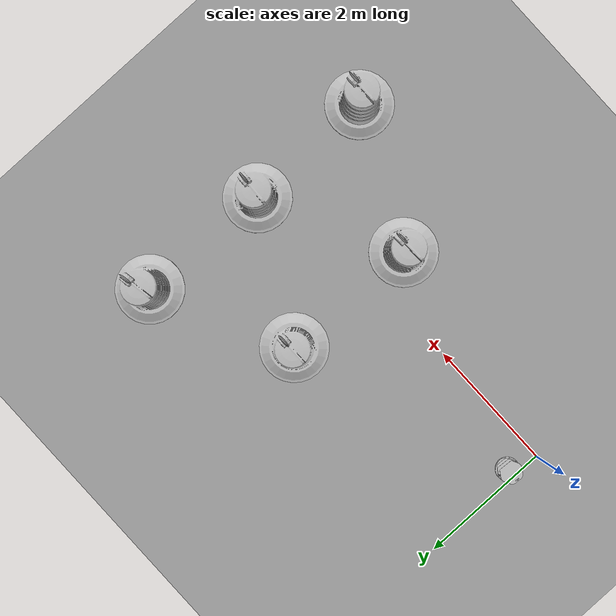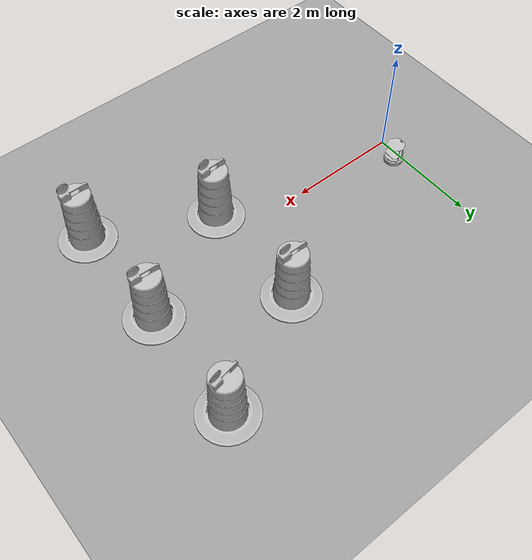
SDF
<sdf version="1.4">
 <world name="default">
  <model name="ground_plane_0">
   <static>1</static>
   <link name="link">
    <collision name="collision">
     <geometry><plane><normal>0 0 1</normal><size>100 100</size></plane></geometry>
     <surface><friction><ode><mu>100</mu><mu2>50</mu2></ode></friction></surface>
    </collision>
    <visual name="visual">
     <cast_shadows>0</cast_shadows>
     <geometry><plane><normal>0 0 1</normal><size>100 100</size></plane></geometry>
     <material>
      <script><uri>file://media/materials/scripts/gazebo.material</uri><name>Gazebo/Grey</name></script>
     </material>
    </visual>
    <velocity_decay><linear>0</linear><angular>0</angular></velocity_decay>
   </link>
   <pose>0.497681 0 0 0 -0 0</pose>
  </model>
  <model name="mobile_base">
   <link name="base_footprint">
    <inertial>
     <pose>-0.00263512 -4.10874e-05 0.129243 0 -0 0</pose>
     <mass>4.6973</mass>
     <inertia>
      <ixx>0.1365</ixx>
      <ixy>-2.51802e-05</ixy>
      <ixz>0.0108194</ixz>
      <iyy>0.132157</iyy>
      <iyz>4.89572e-05</iyz>
      <izz>0.0741648</izz>
     </inertia>
    </inertial>
    <collision name="base_footprint_collision_base_link">
     <pose>0 0 0.06969 0 -0 0</pose>
     <geometry><cylinder><length>0.10938</length><radius>0.178</radius></cylinder></geometry>
     <surface><friction><ode><mu>0.3</mu><mu2>0.3</mu2></ode></friction></surface>
    </collision>
    <collision name="base_footprint_collision_camera_link">
     <pose>-0.087 -0.0015 0.2972 0 -0 0</pose>
     <geometry><box><size>0.073 0.276 0.072</size></box></geometry>
    </collision>
    <collision name="base_footprint_collision_caster_back_link">
     <pose>-0.135 0 0.0192 -1.5708 0 0</pose>
     <geometry><cylinder><length>0.0176</length><radius>0.017</radius></cylinder></geometry>
     <surface>
      <contact><ode><kp>1e+06</kp><kd>100</kd><max_vel>1</max_vel><min_depth>0.001</min_depth></ode></contact>
      <friction><ode><mu>0</mu><mu2>0</mu2></ode></friction>
     </surface>
    </collision>
    <collision name="base_footprint_collision_caster_front_link">
     <pose>0.115 0 0.0172 -1.5708 0 0</pose>
     <geometry><cylinder><length>0.0176</length><radius>0.017</radius></cylinder></geometry>
     <surface>
      <contact><ode><kp>1e+06</kp><kd>100</kd><max_vel>1</max_vel><min_depth>0.001</min_depth></ode></contact>
      <friction><ode><mu>0</mu><mu2>0</mu2></ode></friction>
     </surface>
    </collision>
    <collision name="base_footprint_collision_mount_asus_xtion_pro_link">
     <pose>-0.1024 0 0.2822 0 -0 0</pose>
     <geometry><box><size>0.033 0.276 0.012</size></box></geometry>
    </collision>
    <collision name="base_footprint_collision_plate_bottom_link">
     <pose>0 0 0.1408 0 -0 0</pose>
     <geometry><cylinder><length>0.006</length><radius>0.17</radius></cylinder></geometry>
    </collision>
    <collision name="base_footprint_collision_plate_middle_link">
     <pose>0 0 0.1976 0 -0 0</pose>
     <geometry><cylinder><length>0.006</length><radius>0.17</radius></cylinder></geometry>
    </collision>
    <collision name="base_footprint_collision_plate_top_link">
     <pose>0 0 0.4068 0 -0 0</pose>
     <geometry><cylinder><length>0.006</length><radius>0.17</radius></cylinder></geometry>
    </collision>
    <collision name="base_footprint_collision_pole_bottom_0_link">
     <pose>0.12 0.082 0.113 0 -0 0</pose>
     <geometry><cylinder><length>0.0492</length><radius>0.006</radius></cylinder></geometry>
    </collision>
    <collision name="base_footprint_collision_pole_bottom_1_link">
     <pose>0.055 0.12 0.113 0 -0 0</pose>
     <geometry><cylinder><length>0.0492</length><radius>0.006</radius></cylinder></geometry>
    </collision>
    <collision name="base_footprint_collision_pole_bottom_2_link">
     <pose>-0.055 0.12 0.113 0 -0 0</pose>
     <geometry><cylinder><length>0.0492</length><radius>0.006</radius></cylinder></geometry>
    </collision>
    <collision name="base_footprint_collision_pole_bottom_3_link">
     <pose>0.12 -0.082 0.113 0 -0 0</pose>
     <geometry><cylinder><length>0.0492</length><radius>0.006</radius></cylinder></geometry>
    </collision>
    <collision name="base_footprint_collision_pole_bottom_4_link">
     <pose>0.055 -0.12 0.113 0 -0 0</pose>
     <geometry><cylinder><length>0.0492</length><radius>0.006</radius></cylinder></geometry>
    </collision>
    <collision name="base_footprint_collision_pole_bottom_5_link">
     <pose>-0.055 -0.12 0.113 0 -0 0</pose>
     <geometry><cylinder><length>0.0492</length><radius>0.006</radius></cylinder></geometry>
    </collision>
    <collision name="base_footprint_collision_pole_kinect_0_link">
     <pose>-0.1024 0.098 0.2474 0 -0 0</pose>
     <geometry><cylinder><length>0.0936</length><radius>0.006</radius></cylinder></geometry>
    </collision>
    <collision name="base_footprint_collision_pole_kinect_1_link">
     <pose>-0.1024 -0.098 0.2474 0 -0 0</pose>
     <geometry><cylinder><length>0.0936</length><radius>0.006</radius></cylinder></geometry>
    </collision>
    <collision name="base_footprint_collision_pole_middle_0_link">
     <pose>0.0381 0.1505 0.1742 0 -0 0</pose>
     <geometry><cylinder><length>0.0608</length><radius>0.006</radius></cylinder></geometry>
    </collision>
    <collision name="base_footprint_collision_pole_middle_1_link">
     <pose>0.0381 -0.1505 0.1742 0 -0 0</pose>
     <geometry><cylinder><length>0.0608</length><radius>0.006</radius></cylinder></geometry>
    </collision>
    <collision name="base_footprint_collision_pole_middle_2_link">
     <pose>-0.0381 0.1505 0.1742 0 -0 0</pose>
     <geometry><cylinder><length>0.0608</length><radius>0.006</radius></cylinder></geometry>
    </collision>
    <collision name="base_footprint_collision_pole_middle_3_link">
     <pose>-0.0381 -0.1505 0.1742 0 -0 0</pose>
     <geometry><cylinder><length>0.0608</length><radius>0.006</radius></cylinder></geometry>
    </collision>
    <collision name="base_footprint_collision_pole_top_0_link">
     <pose>0.0381 0.1505 0.3022 0 -0 0</pose>
     <geometry><cylinder><length>0.2032</length><radius>0.006</radius></cylinder></geometry>
    </collision>
    <collision name="base_footprint_collision_pole_top_1_link">
     <pose>0.0381 -0.1505 0.3022 0 -0 0</pose>
     <geometry><cylinder><length>0.2032</length><radius>0.006</radius></cylinder></geometry>
    </collision>
    <collision name="base_footprint_collision_pole_top_2_link">
     <pose>-0.0381 0.1505 0.3022 0 -0 0</pose>
     <geometry><cylinder><length>0.2032</length><radius>0.006</radius></cylinder></geometry>
    </collision>
    <collision name="base_footprint_collision_pole_top_3_link">
     <pose>-0.0381 -0.1505 0.3022 0 -0 0</pose>
     <geometry><cylinder><length>0.2032</length><radius>0.006</radius></cylinder></geometry>
    </collision>
    <visual name="base_footprint_visual_base_link">
     <pose>0.001 0 0.06219 0 -0 0</pose>
     <geometry>
      <mesh><scale>1 1 1</scale><uri>/opt/ros/indigo/share/kobuki_description/meshes/main_body.dae</uri></mesh>
     </geometry>
    </visual>
    <visual name="base_footprint_visual_camera_link">
     <pose>-0.102 0.002 0.3012 0 -0 0</pose>
     <geometry>
      <mesh>
       <scale>1 1 1</scale>
       <uri>/opt/ros/indigo/share/turtlebot_description/meshes/sensors/xtion_pro_camera.dae</uri>
      </mesh>
     </geometry>
    </visual>
    <visual name="base_footprint_visual_mount_asus_xtion_pro_link">
     <pose>-0.1024 0 0.2822 -1.5708 0 0</pose>
     <geometry>
      <mesh>
       <scale>1 1 1</scale>
       <uri>/opt/ros/indigo/share/turtlebot_description/meshes/sensors/xtion_pro_stack.dae</uri>
      </mesh>
     </geometry>
    </visual>
    <visual name="base_footprint_visual_plate_bottom_link">
     <pose>0.02364 0 0.1408 0 -0 0</pose>
     <geometry>
      <mesh>
       <scale>1 1 1</scale>
       <uri>/opt/ros/indigo/share/turtlebot_description/meshes/stacks/hexagons/plate_bottom.dae</uri>
      </mesh>
     </geometry>
    </visual>
    <visual name="base_footprint_visual_plate_middle_link">
     <pose>-0.01364 0 0.1976 0 -0 0</pose>
     <geometry>
      <mesh>
       <scale>1 1 1</scale>
       <uri>/opt/ros/indigo/share/turtlebot_description/meshes/stacks/hexagons/plate_middle.dae</uri>
      </mesh>
     </geometry>
    </visual>
    <visual name="base_footprint_visual_plate_top_link">
     <pose>-0.01364 0 0.4068 0 -0 0</pose>
     <geometry>
      <mesh>
       <scale>1 1 1</scale>
       <uri>/opt/ros/indigo/share/turtlebot_description/meshes/stacks/hexagons/plate_top.dae</uri>
      </mesh>
     </geometry>
    </visual>
    <visual name="base_footprint_visual_pole_bottom_0_link">
     <pose>0.12 0.082 0.113 0 -0 0</pose>
     <geometry>
      <mesh>
       <scale>1 1 1</scale>
       <uri>/opt/ros/indigo/share/turtlebot_description/meshes/stacks/hexagons/pole_bottom.dae</uri>
      </mesh>
     </geometry>
    </visual>
    <visual name="base_footprint_visual_pole_bottom_1_link">
     <pose>0.055 0.12 0.113 0 -0 0</pose>
     <geometry>
      <mesh>
       <scale>1 1 1</scale>
       <uri>/opt/ros/indigo/share/turtlebot_description/meshes/stacks/hexagons/pole_bottom.dae</uri>
      </mesh>
     </geometry>
    </visual>
    <visual name="base_footprint_visual_pole_bottom_2_link">
     <pose>-0.055 0.12 0.113 0 -0 0</pose>
     <geometry>
      <mesh>
       <scale>1 1 1</scale>
       <uri>/opt/ros/indigo/share/turtlebot_description/meshes/stacks/hexagons/pole_bottom.dae</uri>
      </mesh>
     </geometry>
    </visual>
    <visual name="base_footprint_visual_pole_bottom_3_link">
     <pose>0.12 -0.082 0.113 0 -0 0</pose>
     <geometry>
      <mesh>
       <scale>1 1 1</scale>
       <uri>/opt/ros/indigo/share/turtlebot_description/meshes/stacks/hexagons/pole_bottom.dae</uri>
      </mesh>
     </geometry>
    </visual>
    <visual name="base_footprint_visual_pole_bottom_4_link">
     <pose>0.055 -0.12 0.113 0 -0 0</pose>
     <geometry>
      <mesh>
       <scale>1 1 1</scale>
       <uri>/opt/ros/indigo/share/turtlebot_description/meshes/stacks/hexagons/pole_bottom.dae</uri>
      </mesh>
     </geometry>
    </visual>
    <visual name="base_footprint_visual_pole_bottom_5_link">
     <pose>-0.055 -0.12 0.113 0 -0 0</pose>
     <geometry>
      <mesh>
       <scale>1 1 1</scale>
       <uri>/opt/ros/indigo/share/turtlebot_description/meshes/stacks/hexagons/pole_bottom.dae</uri>
      </mesh>
     </geometry>
    </visual>
    <visual name="base_footprint_visual_pole_kinect_0_link">
     <pose>-0.1024 0.098 0.2374 0 -0 0</pose>
     <geometry>
      <mesh>
       <scale>1 1 1</scale>
       <uri>/opt/ros/indigo/share/turtlebot_description/meshes/sensors/sensor_pole.dae</uri>
      </mesh>
     </geometry>
    </visual>
    <visual name="base_footprint_visual_pole_kinect_1_link">
     <pose>-0.1024 -0.098 0.2374 0 -0 0</pose>
     <geometry>
      <mesh>
       <scale>1 1 1</scale>
       <uri>/opt/ros/indigo/share/turtlebot_description/meshes/sensors/sensor_pole.dae</uri>
      </mesh>
     </geometry>
    </visual>
    <visual name="base_footprint_visual_pole_middle_0_link">
     <pose>0.0381 0.1505 0.1742 3.14159 -2.06823e-13 3.14159</pose>
     <geometry>
      <mesh>
       <scale>1 1 1</scale>
       <uri>/opt/ros/indigo/share/turtlebot_description/meshes/stacks/hexagons/pole_middle.dae</uri>
      </mesh>
     </geometry>
    </visual>
    <visual name="base_footprint_visual_pole_middle_1_link">
     <pose>0.0381 -0.1505 0.1742 3.14159 -2.06823e-13 3.14159</pose>
     <geometry>
      <mesh>
       <scale>1 1 1</scale>
       <uri>/opt/ros/indigo/share/turtlebot_description/meshes/stacks/hexagons/pole_middle.dae</uri>
      </mesh>
     </geometry>
    </visual>
    <visual name="base_footprint_visual_pole_middle_2_link">
     <pose>-0.0381 0.1505 0.1742 3.14159 -2.06823e-13 3.14159</pose>
     <geometry>
      <mesh>
       <scale>1 1 1</scale>
       <uri>/opt/ros/indigo/share/turtlebot_description/meshes/stacks/hexagons/pole_middle.dae</uri>
      </mesh>
     </geometry>
    </visual>
    <visual name="base_footprint_visual_pole_middle_3_link">
     <pose>-0.0381 -0.1505 0.1742 3.14159 -2.06823e-13 3.14159</pose>
     <geometry>
      <mesh>
       <scale>1 1 1</scale>
       <uri>/opt/ros/indigo/share/turtlebot_description/meshes/stacks/hexagons/pole_middle.dae</uri>
      </mesh>
     </geometry>
    </visual>
    <visual name="base_footprint_visual_pole_top_0_link">
     <pose>0.0381 0.1505 0.3022 0 -0 0</pose>
     <geometry>
      <mesh>
       <scale>1 1 1</scale>
       <uri>/opt/ros/indigo/share/turtlebot_description/meshes/stacks/hexagons/pole_top.dae</uri>
      </mesh>
     </geometry>
    </visual>
    <visual name="base_footprint_visual_pole_top_1_link">
     <pose>0.0381 -0.1505 0.3022 0 -0 0</pose>
     <geometry>
      <mesh>
       <scale>1 1 1</scale>
       <uri>/opt/ros/indigo/share/turtlebot_description/meshes/stacks/hexagons/pole_top.dae</uri>
      </mesh>
     </geometry>
    </visual>
    <visual name="base_footprint_visual_pole_top_2_link">
     <pose>-0.0381 0.1505 0.3022 0 -0 0</pose>
     <geometry>
      <mesh>
       <scale>1 1 1</scale>
       <uri>/opt/ros/indigo/share/turtlebot_description/meshes/stacks/hexagons/pole_top.dae</uri>
      </mesh>
     </geometry>
    </visual>
    <visual name="base_footprint_visual_pole_top_3_link">
     <pose>-0.0381 -0.1505 0.3022 0 -0 0</pose>
     <geometry>
      <mesh>
       <scale>1 1 1</scale>
       <uri>/opt/ros/indigo/share/turtlebot_description/meshes/stacks/hexagons/pole_top.dae</uri>
      </mesh>
     </geometry>
    </visual>
    <velocity_decay><linear>0</linear><angular>0</angular></velocity_decay>
    <sensor name="bumpers" type="contact">
     <always_on>1</always_on>
     <update_rate>50</update_rate>
     <visualize>1</visualize>
     <contact><collision>base_footprint_collision_base_link</collision><topic>__default_topic__</topic></contact>
     <pose>0 0 0.0102 0 -0 0</pose>
    </sensor>
    <velocity_decay><linear>0</linear><angular>0</angular></velocity_decay>
    <sensor name="camera" type="depth">
     <always_on>1</always_on>
     <update_rate>20</update_rate>
     <camera name="__default__">
      <horizontal_fov>1.0472</horizontal_fov>
      <image><format>B8G8R8</format><width>640</width><height>480</height></image>
      <clip><near>0.05</near><far>8</far></clip>
     </camera>
     <plugin name="kinect_camera_controller" filename="libgazebo_ros_openni_kinect.so">
      <cameraName>camera</cameraName>
      <alwaysOn>true</alwaysOn>
      <updateRate>10</updateRate>
      <imageTopicName>rgb/image_raw</imageTopicName>
      <depthImageTopicName>depth/image_raw</depthImageTopicName>
      <pointCloudTopicName>depth/points</pointCloudTopicName>
      <cameraInfoTopicName>rgb/camera_info</cameraInfoTopicName>
      <depthImageCameraInfoTopicName>depth/camera_info</depthImageCameraInfoTopicName>
      <frameName>camera_depth_optical_frame</frameName>
      <baseline>0.1</baseline>
      <distortion_k1>0.0</distortion_k1>
      <distortion_k2>0.0</distortion_k2>
      <distortion_k3>0.0</distortion_k3>
      <distortion_t1>0.0</distortion_t1>
      <distortion_t2>0.0</distortion_t2>
      <pointCloudCutoff>0.4</pointCloudCutoff>
      <robotNamespace>/</robotNamespace>
     </plugin>
     <pose>-0.087 -0.0015 0.2972 0 -0 0</pose>
    </sensor>
    <velocity_decay><linear>0</linear><angular>0</angular></velocity_decay>
    <velocity_decay><linear>0</linear><angular>0</angular></velocity_decay>
    <velocity_decay><linear>0</linear><angular>0</angular></velocity_decay>
    <sensor name="cliff_sensor_front" type="ray">
     <always_on>1</always_on>
     <update_rate>50</update_rate>
     <visualize>1</visualize>
     <ray>
      <scan>
       <horizontal>
        <samples>50</samples>
        <resolution>1</resolution>
        <min_angle>-0.0436</min_angle>
        <max_angle>0.0436</max_angle>
       </horizontal>
      </scan>
      <range><min>0.01</min><max>0.15</max><resolution>1</resolution></range>
     </ray>
     <pose>0.156 0 0.0316 3.14159 1.57079 3.14159</pose>
    </sensor>
    <velocity_decay><linear>0</linear><angular>0</angular></velocity_decay>
    <sensor name="cliff_sensor_left" type="ray">
     <always_on>1</always_on>
     <update_rate>50</update_rate>
     <visualize>1</visualize>
     <ray>
      <scan>
       <horizontal>
        <samples>50</samples>
        <resolution>1</resolution>
        <min_angle>-0.0436</min_angle>
        <max_angle>0.0436</max_angle>
       </horizontal>
      </scan>
      <range><min>0.01</min><max>0.15</max><resolution>1</resolution></range>
     </ray>
     <pose>0.08734 0.13601 0.0316 3.14159 1.57079 3.14159</pose>
    </sensor>
    <velocity_decay><linear>0</linear><angular>0</angular></velocity_decay>
    <sensor name="cliff_sensor_right" type="ray">
     <always_on>1</always_on>
     <update_rate>50</update_rate>
     <visualize>1</visualize>
     <ray>
      <scan>
       <horizontal>
        <samples>50</samples>
        <resolution>1</resolution>
        <min_angle>-0.0436</min_angle>
        <max_angle>0.0436</max_angle>
       </horizontal>
      </scan>
      <range><min>0.01</min><max>0.15</max><resolution>1</resolution></range>
     </ray>
     <pose>0.085 -0.13601 0.0316 3.14159 1.57079 3.14159</pose>
    </sensor>
    <velocity_decay><linear>0</linear><angular>0</angular></velocity_decay>
    <sensor name="imu" type="imu">
     <always_on>1</always_on>
     <update_rate>50</update_rate>
     <visualize>0</visualize>
     <imu>
      <noise>
       <type>gaussian</type>
       <rate><mean>0</mean><stddev>1.96e-06</stddev><bias_mean>0</bias_mean><bias_stddev>0</bias_stddev></rate>
       <accel><mean>0</mean><stddev>0.017</stddev><bias_mean>0.1</bias_mean><bias_stddev>0.001</bias_stddev></accel>
      </noise>
     </imu>
     <pose>0.056 0.062 0.0304 0 -0 0</pose>
    </sensor>
   </link>
   <link name="wheel_left_link">
    <pose>0 0.115 0.0352 -1.5708 0 0</pose>
    <inertial>
     <mass>0.01</mass>
     <inertia><ixx>0.001</ixx><ixy>0</ixy><ixz>0</ixz><iyy>0.001</iyy><iyz>0</iyz><izz>0.001</izz></inertia>
    </inertial>
    <collision name="wheel_left_link_collision">
     <geometry><cylinder><length>0.0206</length><radius>0.0352</radius></cylinder></geometry>
     <surface>
      <contact><ode><kp>1e+06</kp><kd>100</kd><max_vel>1</max_vel><min_depth>0.001</min_depth></ode></contact>
      <friction><ode><mu>1</mu><mu2>1</mu2></ode></friction>
     </surface>
    </collision>
    <visual name="wheel_left_link_visual">
     <geometry>
      <mesh><scale>1 1 1</scale><uri>/opt/ros/indigo/share/kobuki_description/meshes/wheel.dae</uri></mesh>
     </geometry>
    </visual>
    <velocity_decay><linear>0</linear><angular>0</angular></velocity_decay>
   </link>
   <joint name="wheel_left_joint" type="revolute">
    <child>wheel_left_link</child>
    <parent>base_footprint</parent>
    <axis><xyz>0 1 0</xyz><limit><lower>-1e+16</lower><upper>1e+16</upper></limit></axis>
   </joint>
   <link name="wheel_right_link">
    <pose>0 -0.115 0.0352 -1.5708 0 0</pose>
    <inertial>
     <mass>0.01</mass>
     <inertia><ixx>0.001</ixx><ixy>0</ixy><ixz>0</ixz><iyy>0.001</iyy><iyz>0</iyz><izz>0.001</izz></inertia>
    </inertial>
    <collision name="wheel_right_link_collision">
     <geometry><cylinder><length>0.0206</length><radius>0.035</radius></cylinder></geometry>
     <surface>
      <contact><ode><kp>1e+06</kp><kd>100</kd><max_vel>1</max_vel><min_depth>0.001</min_depth></ode></contact>
      <friction><ode><mu>1</mu><mu2>1</mu2></ode></friction>
     </surface>
    </collision>
    <visual name="wheel_right_link_visual">
     <geometry>
      <mesh><scale>1 1 1</scale><uri>/opt/ros/indigo/share/kobuki_description/meshes/wheel.dae</uri></mesh>
     </geometry>
    </visual>
    <velocity_decay><linear>0</linear><angular>0</angular></velocity_decay>
   </link>
   <joint name="wheel_right_joint" type="revolute">
    <child>wheel_right_link</child>
    <parent>base_footprint</parent>
    <axis><xyz>0 1 0</xyz><limit><lower>-1e+16</lower><upper>1e+16</upper></limit></axis>
   </joint>
   <static>0</static>
   <plugin name="kobuki_controller" filename="libgazebo_ros_kobuki.so">
    <publish_tf>1</publish_tf>
    <left_wheel_joint_name>wheel_left_joint</left_wheel_joint_name>
    <right_wheel_joint_name>wheel_right_joint</right_wheel_joint_name>
    <wheel_separation>.230</wheel_separation>
    <wheel_diameter>0.070</wheel_diameter>
    <torque>1.0</torque>
    <velocity_command_timeout>0.6</velocity_command_timeout>
    <cliff_sensor_left_name>cliff_sensor_left</cliff_sensor_left_name>
    <cliff_sensor_center_name>cliff_sensor_front</cliff_sensor_center_name>
    <cliff_sensor_right_name>cliff_sensor_right</cliff_sensor_right_name>
    <cliff_detection_threshold>0.04</cliff_detection_threshold>
    <bumper_name>bumpers</bumper_name>
    <imu_name>imu</imu_name>
    <robotNamespace>/</robotNamespace>
   </plugin>
   <pose>0.157429 0.437801 -0.001131 0.000538 -0.007996 -0.056369</pose>
  </model>
  <model name="Construction Barrel">
   <link name="link">
    <inertial>
     <pose>0 0 0.4 0 -0 0</pose>
     <mass>500</mass>
     <inertia><ixx>51.2096</ixx><iyy>51.2096</iyy><izz>25</izz><ixy>0</ixy><ixz>0</ixz><iyz>0</iyz></inertia>
    </inertial>
    <collision name="collision">
     <geometry><mesh><uri>model://construction_barrel/meshes/construction_barrel.dae</uri></mesh></geometry>
    </collision>
    <visual name="visual">
     <geometry><mesh><uri>model://construction_barrel/meshes/construction_barrel.dae</uri></mesh></geometry>
    </visual>
    <velocity_decay><linear>0</linear><angular>0</angular></velocity_decay>
   </link>
   <pose>3.477 -0.560084 -0.00017 -6.8e-05 -0.000543 0.042429</pose>
   <static>0</static>
  </model>
  <model name="Construction Barrel_0">
   <link name="link">
    <inertial>
     <pose>0 0 0.4 0 -0 0</pose>
     <mass>500</mass>
     <inertia><ixx>51.2096</ixx><iyy>51.2096</iyy><izz>25</izz><ixy>0</ixy><ixz>0</ixz><iyz>0</iyz></inertia>
    </inertial>
    <collision name="collision">
     <geometry><mesh><uri>model://construction_barrel/meshes/construction_barrel.dae</uri></mesh></geometry>
    </collision>
    <visual name="visual">
     <geometry><mesh><uri>model://construction_barrel/meshes/construction_barrel.dae</uri></mesh></geometry>
    </visual>
    <velocity_decay><linear>0</linear><angular>0</angular></velocity_decay>
   </link>
   <pose>3.52168 1.53695 -0.00017 -6.9e-05 -0.000543 -0.007127</pose>
   <static>0</static>
  </model>
  <model name="Construction Barrel_1">
   <link name="link">
    <inertial>
     <pose>0 0 0.4 0 -0 0</pose>
     <mass>500</mass>
     <inertia><ixx>51.2096</ixx><iyy>51.2096</iyy><izz>25</izz><ixy>0</ixy><ixz>0</ixz><iyz>0</iyz></inertia>
    </inertial>
    <collision name="collision">
     <geometry><mesh><uri>model://construction_barrel/meshes/construction_barrel.dae</uri></mesh></geometry>
    </collision>
    <visual name="visual">
     <geometry><mesh><uri>model://construction_barrel/meshes/construction_barrel.dae</uri></mesh></geometry>
    </visual>
    <velocity_decay><linear>0</linear><angular>0</angular></velocity_decay>
   </link>
   <pose>5.55035 2.51628 -0.000169 0.000504 0.000209 0.169633</pose>
   <static>0</static>
  </model>
  <model name="Construction Barrel_2">
   <link name="link">
    <inertial>
     <pose>0 0 0.4 0 -0 0</pose>
     <mass>500</mass>
     <inertia><ixx>51.2096</ixx><iyy>51.2096</iyy><izz>25</izz><ixy>0</ixy><ixz>0</ixz><iyz>0</iyz></inertia>
    </inertial>
    <collision name="collision">
     <geometry><mesh><uri>model://construction_barrel/meshes/construction_barrel.dae</uri></mesh></geometry>
    </collision>
    <visual name="visual">
     <geometry><mesh><uri>model://construction_barrel/meshes/construction_barrel.dae</uri></mesh></geometry>
    </visual>
    <velocity_decay><linear>0</linear><angular>0</angular></velocity_decay>
   </link>
   <pose>5.48156 0.475551 -0.00017 -6.9e-05 -0.000543 -0.040439</pose>
   <static>0</static>
  </model>
  <model name="Construction Barrel_3">
   <link name="link">
    <inertial>
     <pose>0 0 0.4 0 -0 0</pose>
     <mass>500</mass>
     <inertia><ixx>51.2096</ixx><iyy>51.2096</iyy><izz>25</izz><ixy>0</ixy><ixz>0</ixz><iyz>0</iyz></inertia>
    </inertial>
    <collision name="collision">
     <geometry><mesh><uri>model://construction_barrel/meshes/construction_barrel.dae</uri></mesh></geometry>
    </collision>
    <visual name="visual">
     <geometry><mesh><uri>model://construction_barrel/meshes/construction_barrel.dae</uri></mesh></geometry>
    </visual>
    <velocity_decay><linear>0</linear><angular>0</angular></velocity_decay>
   </link>
   <pose>5.48811 -1.52204 -0.00017 -6.9e-05 -0.000543 0.000763</pose>
   <static>0</static>
  </model>
 </world>
</sdf>
